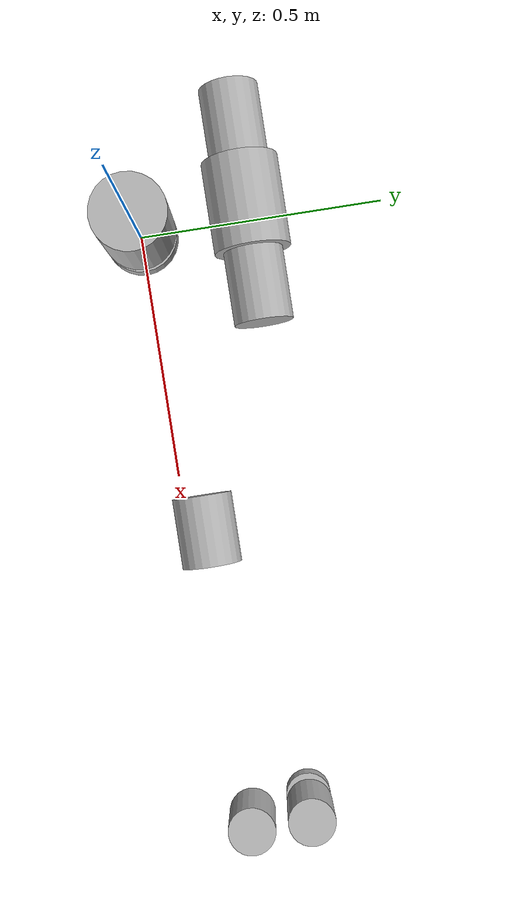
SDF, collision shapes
<?xml version="1.0" ?>
<!-- |    This document was autogenerated by xmacro4sdf from model.sdf.xmacro          | -->
<!-- |    EDITING THIS FILE BY HAND IS NOT RECOMMENDED                                 | -->
<sdf version="1.7">
	<!--include defination-->
	<!--model-->
	<model canonical_link="base_link" name="ur10">
		<link name="base_link">
		<pose relative_to="__model__">0 0 0 0 0 0</pose>
		<inertial>
			<mass>4</mass>
			<inertia>
				<ixx>0.00610633</ixx>
				<ixy>0</ixy>
				<ixz>0</ixz>
				<iyy>0.00610633</iyy>
				<iyz>0</iyz>
				<izz>0.01125</izz>
			</inertia>
		</inertial>
		<collision name="base_link_collision">
			<geometry>
				<cylinder>
					<radius>0.075</radius>
					<length>0.038</length>
				</cylinder>
			</geometry>
		</collision>
		<visual name="base_link_visual">
			<geometry>
				<mesh>
					<uri>meshes/visual/base.dae</uri>
				</mesh>
			</geometry>
		</visual>
		<self_collide>1</self_collide>
		</link>
		<joint name="shoulder_pan_joint" type="revolute">
			<pose relative_to="base_link">0 0 0.1273 0 -0 0</pose>
			<parent>base_link</parent>
			<child>shoulder_link</child>
			<axis>
				<xyz>0 0 1</xyz>
				<limit>
					<lower>-6.28319</lower>
					<upper>6.28319</upper>
					<effort>330</effort>
					<velocity>2.16</velocity>
				</limit>
				<dynamics>
					<damping>0</damping>
					<friction>0</friction>
					<spring_reference>0</spring_reference>
					<spring_stiffness>0</spring_stiffness>
				</dynamics>
			</axis>
		</joint>
		<link name="shoulder_link">
		<pose relative_to="shoulder_pan_joint">0 0 0 0 -0 0</pose>
		<inertial>
			<mass>7.778</mass>
			<inertia>
				<ixx>0.0314743</ixx>
				<ixy>0</ixy>
				<ixz>0</ixz>
				<iyy>0.0314743</iyy>
				<iyz>0</iyz>
				<izz>0.0218756</izz>
			</inertia>
		</inertial>
		<collision name="shoulder_link_collision">
			<geometry>
				<cylinder>
					<radius>0.075</radius>
					<length>0.177</length>
				</cylinder>
			</geometry>
		</collision>
		<visual name="shoulder_link_visual">
			<geometry>
				<mesh>
					<uri>meshes/visual/shoulder.dae</uri>
				</mesh>
			</geometry>
		</visual>
		<self_collide>1</self_collide>
		</link>
		<joint name="shoulder_lift_joint" type="revolute">
			<pose relative_to="shoulder_link">0 0.220941 0 0 1.5708 0</pose>
			<parent>shoulder_link</parent>
			<child>upper_arm_link</child>
			<axis>
				<xyz>0 1 0</xyz>
				<limit>
					<lower>-6.28319</lower>
					<upper>6.28319</upper>
					<effort>330</effort>
					<velocity>2.16</velocity>
				</limit>
				<dynamics>
					<damping>0</damping>
					<friction>0</friction>
					<spring_reference>0</spring_reference>
					<spring_stiffness>0</spring_stiffness>
				</dynamics>
			</axis>
		</joint>
		<link name="upper_arm_link">
		<pose relative_to="shoulder_lift_joint">0 0 0 0 -0 0</pose>
		<inertial>
			<pose>0 -0.045 0.306 0 -0 0</pose>
			<mass>12.93</mass>
			<inertia>
				<ixx>0.421754</ixx>
				<ixy>0</ixy>
				<ixz>0</ixz>
				<iyy>0.421754</iyy>
				<iyz>0</iyz>
				<izz>0.0363656</izz>
			</inertia>
		</inertial>
		<collision name="upper_arm_link_collision1">
			<geometry>
				<cylinder>
					<radius>0.075</radius>
					<length>0.177</length>
				</cylinder>
			</geometry>
		</collision>
		<collision name="upper_arm_link_collision2">
			<geometry>
				<cylinder>
					<radius>0.058</radius>
					<length>0.461</length>
				</cylinder>
			</geometry>
		</collision>
		<collision name="upper_arm_link_collision3">
			<geometry>
				<cylinder>
					<radius>0.058</radius>
					<length>0.129</length>
				</cylinder>
			</geometry>
		</collision>
		<visual name="upper_arm_link_visual">
			<geometry>
				<mesh>
					<uri>meshes/visual/upperarm.dae</uri>
				</mesh>
			</geometry>
		</visual>
		<self_collide>1</self_collide>
		</link>
		<joint name="elbow_joint" type="revolute">
			<pose relative_to="upper_arm_link">0 -0.1719 0.612 0 -0 0</pose>
			<parent>upper_arm_link</parent>
			<child>forearm_link</child>
			<axis>
				<xyz>0 1 0</xyz>
				<limit>
					<lower>-3.14159</lower>
					<upper>3.14159</upper>
					<effort>150</effort>
					<velocity>3.15</velocity>
				</limit>
				<dynamics>
					<damping>0</damping>
					<friction>0</friction>
					<spring_reference>0</spring_reference>
					<spring_stiffness>0</spring_stiffness>
				</dynamics>
			</axis>
		</joint>
		<link name="forearm_link">
		<pose relative_to="elbow_joint">0 0 0 0 -0 0</pose>
		<inertial>
			<pose>0 0 0.28615 0 -0 0</pose>
			<mass>3.87</mass>
			<inertia>
				<ixx>0.11107</ixx>
				<ixy>0</ixy>
				<ixz>0</ixz>
				<iyy>0.11107</iyy>
				<iyz>0</iyz>
				<izz>0.0108844</izz>
			</inertia>
		</inertial>
		<collision name="forearm_link_collision1">
			<geometry>
				<cylinder>
					<radius>0.058</radius>
					<length>0.136</length>
				</cylinder>
			</geometry>
		</collision>
		<collision name="forearm_link_collision2">
			<geometry>
				<cylinder>
					<radius>0.058</radius>
					<length>0.136</length>
				</cylinder>
			</geometry>
		</collision>
		<collision name="forearm_link_collision3">
			<geometry>
				<cylinder>
					<radius>0.058</radius>
					<length>0.136</length>
				</cylinder>
			</geometry>
		</collision>
		<visual name="forearm_link_visual">
			<geometry>
				<mesh>
					<uri>meshes/visual/forearm.dae</uri>
				</mesh>
			</geometry>
		</visual>
		<self_collide>1</self_collide>
		</link>
		<joint name="wrist_1_joint" type="revolute">
			<pose relative_to="forearm_link">0 0 0.5723 0 1.5708 0</pose>
			<parent>forearm_link</parent>
			<child>wrist_1_link</child>
			<axis>
				<xyz>0 1 0</xyz>
				<limit>
					<lower>-6.28319</lower>
					<upper>6.28319</upper>
					<effort>54</effort>
					<velocity>3.2</velocity>
				</limit>
				<dynamics>
					<damping>0</damping>
					<friction>0</friction>
					<spring_reference>0</spring_reference>
					<spring_stiffness>0</spring_stiffness>
				</dynamics>
			</axis>
		</joint>
		<link name="wrist_1_link">
		<pose relative_to="wrist_1_joint">0 0 0 0 -0 0</pose>
		<inertial>
			<pose>0 0.1149 0 0 -0 0</pose>
			<mass>1.96</mass>
			<inertia>
				<ixx>0.00510825</ixx>
				<ixy>0</ixy>
				<ixz>0</ixz>
				<iyy>0.00510825</iyy>
				<iyz>0</iyz>
				<izz>0.0055125</izz>
			</inertia>
		</inertial>
		<collision name="wrist_1_link_collision">
			<geometry>
				<cylinder>
					<radius>0.0455</radius>
					<length>0.119</length>
				</cylinder>
			</geometry>
		</collision>
		<visual name="wrist_1_link_visual">
			<geometry>
				<mesh>
					<uri>meshes/visual/wrist1.dae</uri>
				</mesh>
			</geometry>
		</visual>
		<self_collide>1</self_collide>
		</link>
		<joint name="wrist_2_joint" type="revolute">
			<pose relative_to="wrist_1_link">0 0.1149 0 0 -0 0</pose>
			<parent>wrist_1_link</parent>
			<child>wrist_2_link</child>
			<axis>
				<xyz>0 0 1</xyz>
				<limit>
					<lower>-6.28319</lower>
					<upper>6.28319</upper>
					<effort>54</effort>
					<velocity>3.2</velocity>
				</limit>
				<dynamics>
					<damping>0</damping>
					<friction>0</friction>
					<spring_reference>0</spring_reference>
					<spring_stiffness>0</spring_stiffness>
				</dynamics>
			</axis>
		</joint>
		<link name="wrist_2_link">
		<pose relative_to="wrist_2_joint">0 0 0 0 -0 0</pose>
		<inertial>
			<pose>0 0 0.1157 0 -0 0</pose>
			<mass>1.96</mass>
			<inertia>
				<ixx>0.00510825</ixx>
				<ixy>0</ixy>
				<ixz>0</ixz>
				<iyy>0.00510825</iyy>
				<iyz>0</iyz>
				<izz>0.0055125</izz>
			</inertia>
		</inertial>
		<collision name="wrist_2_link_collision">
			<geometry>
				<cylinder>
					<radius>0.0455</radius>
					<length>0.119</length>
				</cylinder>
			</geometry>
		</collision>
		<visual name="wrist_2_link_visual">
			<geometry>
				<mesh>
					<uri>meshes/visual/wrist2.dae</uri>
				</mesh>
			</geometry>
		</visual>
		<self_collide>1</self_collide>
		</link>
		<joint name="wrist_3_joint" type="revolute">
			<pose relative_to="wrist_2_link">0 0 0.1157 0 -0 0</pose>
			<parent>wrist_2_link</parent>
			<child>wrist_3_link</child>
			<axis>
				<xyz>0 1 0</xyz>
				<limit>
					<lower>-6.28319</lower>
					<upper>6.28319</upper>
					<effort>54</effort>
					<velocity>3.2</velocity>
				</limit>
				<dynamics>
					<damping>0</damping>
					<friction>0</friction>
					<spring_reference>0</spring_reference>
					<spring_stiffness>0</spring_stiffness>
				</dynamics>
			</axis>
		</joint>
		<link name="wrist_3_link">
		<pose relative_to="wrist_3_joint">0 0 0 0 -0 0</pose>
		<inertial>
			<pose>0 0.07695 0 1.5708 -0 0</pose>
			<mass>0.202</mass>
			<inertia>
				<ixx>0.000117922</ixx>
				<ixy>0</ixy>
				<ixz>0</ixz>
				<iyy>0.000117922</iyy>
				<iyz>0</iyz>
				<izz>0.000204525</izz>
			</inertia>
		</inertial>
		<collision name="wrist_3_link_collision">
			<geometry>
				<cylinder>
					<radius>0.045</radius>
					<length>0.031</length>
				</cylinder>
			</geometry>
		</collision>
		<visual name="wrist_3_link_visual">
			<geometry>
				<mesh>
					<uri>meshes/visual/wrist3.dae</uri>
				</mesh>
			</geometry>
		</visual>
		<self_collide>1</self_collide>
		</link>
		<joint name="ee_fixed_joint" type="fixed">
			<pose relative_to="wrist_3_link">0.0 0.0922 0.0 0.0 0.0 1.5707963267948966</pose>
			<parent>wrist_3_link</parent>
			<child>ee_link</child>
		</joint>
		<link name="ee_link">
		<inertial>
			<mass>0.001</mass>
			<inertia>
				<ixx>1.6666666666666667e-08</ixx>
				<ixy>0</ixy>
				<ixz>0</ixz>
				<iyy>1.6666666666666667e-08</iyy>
				<iyz>0</iyz>
				<izz>1.6666666666666667e-08</izz>
			</inertia>
		</inertial>
		<collision name="collision">
			<geometry>
				<box>
					<size>0.01 0.01 0.01</size>
				</box>
			</geometry>
		</collision>
		<self_collide>1</self_collide>
		</link>
		<joint name="world_ur10_joint" type="fixed">
			<parent>world</parent>
			<child>base_link</child>
		</joint>
		<!--plugins for ur-->
		<plugin filename="gz-sim-joint-position-controller-system" name="gz::sim::systems::JointPositionController">
			<joint_name>shoulder_pan_joint</joint_name>
			<p_gain>10000</p_gain>
			<i_gain>100</i_gain>
			<d_gain>500</d_gain>
			<i_max>200.0</i_max>
			<i_min>-200.0</i_min>
		</plugin>
		<plugin filename="gz-sim-joint-position-controller-system" name="gz::sim::systems::JointPositionController">
			<joint_name>shoulder_lift_joint</joint_name>
			<p_gain>50000</p_gain>
			<i_gain>100</i_gain>
			<d_gain>1000</d_gain>
			<i_max>200.0</i_max>
			<i_min>-200.0</i_min>
		</plugin>
		<plugin filename="gz-sim-joint-position-controller-system" name="gz::sim::systems::JointPositionController">
			<joint_name>elbow_joint</joint_name>
			<p_gain>50000.0</p_gain>
			<i_gain>100</i_gain>
			<d_gain>1000</d_gain>
			<i_max>200</i_max>
			<i_min>-200</i_min>
		</plugin>
		<plugin filename="gz-sim-joint-position-controller-system" name="gz::sim::systems::JointPositionController">
			<joint_name>wrist_1_joint</joint_name>
			<p_gain>100.0</p_gain>
			<i_gain>50.0</i_gain>
			<d_gain>10.0</d_gain>
			<i_max>10.0</i_max>
			<i_min>-10.0</i_min>
		</plugin>
		<plugin filename="gz-sim-joint-position-controller-system" name="gz::sim::systems::JointPositionController">
			<joint_name>wrist_2_joint</joint_name>
			<p_gain>75.0</p_gain>
			<i_gain>10</i_gain>
			<d_gain>5</d_gain>
			<i_max>10.0</i_max>
			<i_min>-10.0</i_min>
		</plugin>
		<plugin filename="gz-sim-joint-position-controller-system" name="gz::sim::systems::JointPositionController">
			<joint_name>wrist_3_joint</joint_name>
			<p_gain>25.0</p_gain>
			<i_gain>10</i_gain>
			<d_gain>0.1</d_gain>
			<i_max>10.0</i_max>
			<i_min>-10.0</i_min>
		</plugin>
		<!--joint state publisher-->
		<plugin filename="gz-sim-joint-state-publisher-system" name="gz::sim::systems::JointStatePublisher">
			<joint_name>shoulder_pan_joint</joint_name>
			<joint_name>shoulder_lift_joint</joint_name>
			<joint_name>elbow_joint</joint_name>
			<joint_name>wrist_1_joint</joint_name>
			<joint_name>wrist_2_joint</joint_name>
			<joint_name>wrist_3_joint</joint_name>
		</plugin>
	</model>
</sdf>
